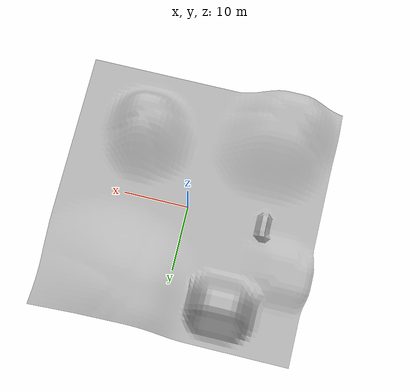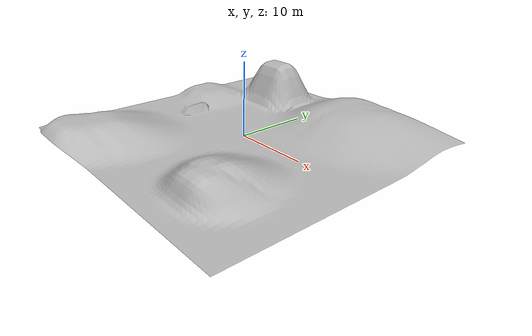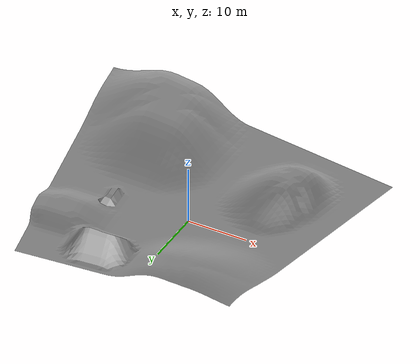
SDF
<?xml version="1.0" ?>
<sdf version="1.5">
  <model name="terrain_3">
    <pose>0 0 0 0 0 0</pose>
    <static>true</static>
    <link name="body">
      <visual name="visual">
        <geometry>
          <mesh><uri>model://terrain_3/media/terrain_3.dae</uri></mesh>
        </geometry>
	<material>
          <script>
            <uri>model://terrain_3/media/scripts</uri>
            <uri>model://terrain_3/media/Textures</uri>
            <name>RepeatedGrass/Diffuse</name>
          </script>
        </material>
      </visual>
      <collision name="collision">
        <geometry>
          <mesh><uri>model://terrain_3/media/terrain_3.dae</uri></mesh>
        </geometry>
      </collision>
    </link>
  </model>
</sdf>
